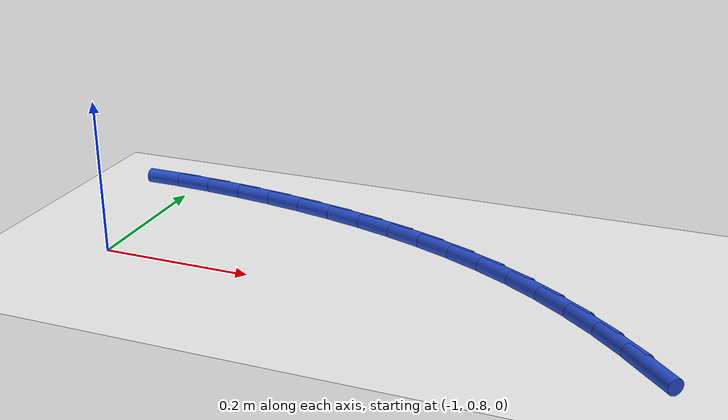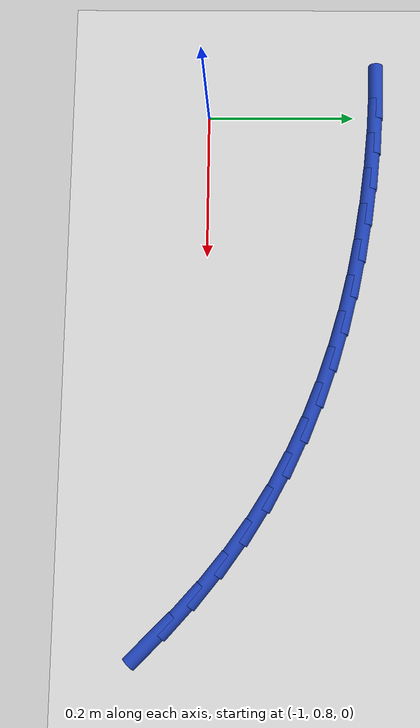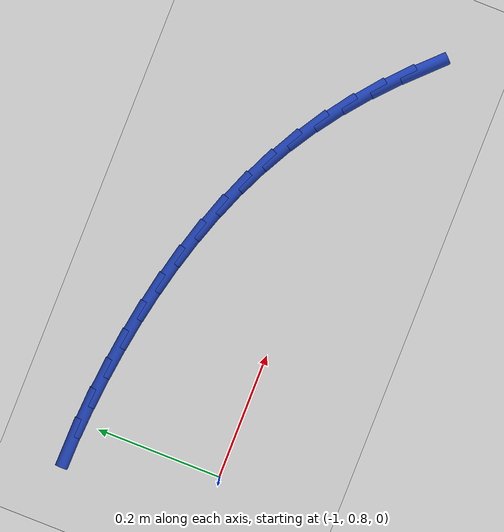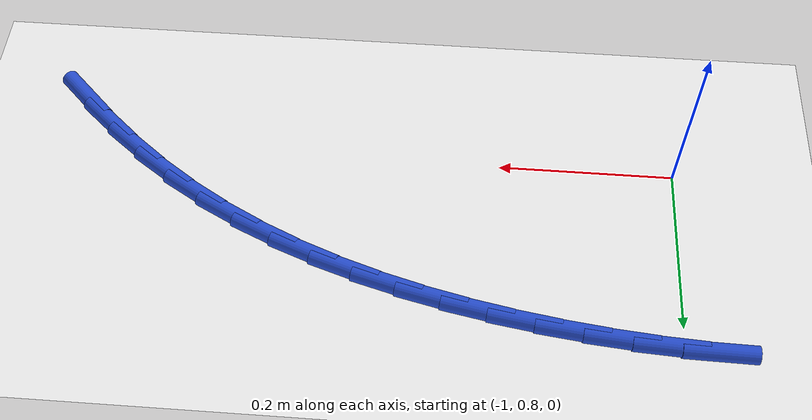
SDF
<sdf version="1.6">
 <world name="default">
  <model name="ground_plane">
   <static>1</static>
   <link name="link">
    <collision name="collision">
     <geometry><plane><normal>0 0 1</normal><size>100 100</size></plane></geometry>
     <surface><friction><ode><mu>100</mu><mu2>50</mu2></ode></friction></surface>
    </collision>
    <visual name="visual">
     <cast_shadows>0</cast_shadows>
     <geometry><plane><normal>0 0 1</normal><size>100 100</size></plane></geometry>
     <material>
      <script><uri>file://media/materials/scripts/gazebo.material</uri><name>Gazebo/WhiteGlow</name></script>
     </material>
    </visual>
   </link>
  </model>
  <model name="line">
   <link name="link_16">
    <pose>-0.30132543480969937 0.7373756346786041 0.01 0 1.57 -0.78886531125068</pose>
    <collision name="collision">
     <geometry><cylinder><radius>0.01</radius><length>0.08</length></cylinder></geometry>
    </collision>
    <visual name="visual">
     <material>
      <script><name>Gazebo/Blue</name><uri>file://media/materials/scripts/gazebo.material</uri></script>
     </material>
     <geometry><cylinder><radius>0.01</radius><length>0.08</length></cylinder></geometry>
    </visual>
   </link>
   <link name="link_17">
    <pose>-0.3370866824541095 0.7733857251610479 0.01 0 1.57 -0.7341581569797597</pose>
    <collision name="collision">
     <geometry><cylinder><radius>0.01</radius><length>0.08</length></cylinder></geometry>
    </collision>
    <visual name="visual">
     <material>
      <script><name>Gazebo/Blue</name><uri>file://media/materials/scripts/gazebo.material</uri></script>
     </material>
     <geometry><cylinder><radius>0.01</radius><length>0.08</length></cylinder></geometry>
    </visual>
   </link>
   <link name="link_18">
    <pose>-0.37459863951592803 0.8072377858676616 0.01 0 1.57 -0.6767106889745715</pose>
    <collision name="collision">
     <geometry><cylinder><radius>0.01</radius><length>0.08</length></cylinder></geometry>
    </collision>
    <visual name="visual">
     <material>
      <script><name>Gazebo/Blue</name><uri>file://media/materials/scripts/gazebo.material</uri></script>
     </material>
     <geometry><cylinder><radius>0.01</radius><length>0.08</length></cylinder></geometry>
    </visual>
   </link>
   <link name="link_19">
    <pose>-0.41382710505923653 0.8387474815054963 0.01 0 1.57 -0.6163706837453382</pose>
    <collision name="collision">
     <geometry><cylinder><radius>0.01</radius><length>0.08</length></cylinder></geometry>
    </collision>
    <visual name="visual">
     <material>
      <script><name>Gazebo/Blue</name><uri>file://media/materials/scripts/gazebo.material</uri></script>
     </material>
     <geometry><cylinder><radius>0.01</radius><length>0.08</length></cylinder></geometry>
    </visual>
   </link>
   <link name="link_20">
    <pose>-0.4547378781481167 0.8677304767816044 0.01 0 1.57 -0.5531404171532092</pose>
    <collision name="collision">
     <geometry><cylinder><radius>0.01</radius><length>0.08</length></cylinder></geometry>
    </collision>
    <visual name="visual">
     <material>
      <script><name>Gazebo/Blue</name><uri>file://media/materials/scripts/gazebo.material</uri></script>
     </material>
     <geometry><cylinder><radius>0.01</radius><length>0.08</length></cylinder></geometry>
    </visual>
   </link>
   <link name="link_21">
    <pose>-0.4972950920885079 0.8940067670521239 0.01 0 1.57 -0.4900063854658154</pose>
    <collision name="collision">
     <geometry><cylinder><radius>0.01</radius><length>0.08</length></cylinder></geometry>
    </collision>
    <visual name="visual">
     <material>
      <script><name>Gazebo/Blue</name><uri>file://media/materials/scripts/gazebo.material</uri></script>
     </material>
     <geometry><cylinder><radius>0.01</radius><length>0.08</length></cylinder></geometry>
    </visual>
   </link>
   <link name="link_22">
    <pose>-0.541408828059521 0.9175368727516332 0.01 0 1.57 -0.43068710015319955</pose>
    <collision name="collision">
     <geometry><cylinder><radius>0.01</radius><length>0.08</length></cylinder></geometry>
    </collision>
    <visual name="visual">
     <material>
      <script><name>Gazebo/Blue</name><uri>file://media/materials/scripts/gazebo.material</uri></script>
     </material>
     <geometry><cylinder><radius>0.01</radius><length>0.08</length></cylinder></geometry>
    </visual>
   </link>
   <link name="link_23">
    <pose>-0.5869245837281822 0.9384492189585116 0.01 0 1.57 -0.37550168849485815</pose>
    <collision name="collision">
     <geometry><cylinder><radius>0.01</radius><length>0.08</length></cylinder></geometry>
    </collision>
    <visual name="visual">
     <material>
      <script><name>Gazebo/Blue</name><uri>file://media/materials/scripts/gazebo.material</uri></script>
     </material>
     <geometry><cylinder><radius>0.01</radius><length>0.08</length></cylinder></geometry>
    </visual>
   </link>
   <link name="link_24">
    <pose>-0.6336840637818079 0.956882091764988 0.01 0 1.57 -0.32444526086837605</pose>
    <collision name="collision">
     <geometry><cylinder><radius>0.01</radius><length>0.08</length></cylinder></geometry>
    </collision>
    <visual name="visual">
     <material>
      <script><name>Gazebo/Blue</name><uri>file://media/materials/scripts/gazebo.material</uri></script>
     </material>
     <geometry><cylinder><radius>0.01</radius><length>0.08</length></cylinder></geometry>
    </visual>
   </link>
   <link name="link_25">
    <pose>-0.6815289729077144 0.9729737772632904 0.01 0 1.57 -0.2774258465573865</pose>
    <collision name="collision">
     <geometry><cylinder><radius>0.01</radius><length>0.08</length></cylinder></geometry>
    </collision>
    <visual name="visual">
     <material>
      <script><name>Gazebo/Blue</name><uri>file://media/materials/scripts/gazebo.material</uri></script>
     </material>
     <geometry><cylinder><radius>0.01</radius><length>0.08</length></cylinder></geometry>
    </visual>
   </link>
   <link name="link_26">
    <pose>-0.730301015793218 0.9868625615456478 0.01 0 1.57 -0.23429175470687763</pose>
    <collision name="collision">
     <geometry><cylinder><radius>0.01</radius><length>0.08</length></cylinder></geometry>
    </collision>
    <visual name="visual">
     <material>
      <script><name>Gazebo/Blue</name><uri>file://media/materials/scripts/gazebo.material</uri></script>
     </material>
     <geometry><cylinder><radius>0.01</radius><length>0.08</length></cylinder></geometry>
    </visual>
   </link>
   <link name="link_27">
    <pose>-0.7798418971256349 0.9986867307042888 0.01 0 1.57 -0.1948549506099465</pose>
    <collision name="collision">
     <geometry><cylinder><radius>0.01</radius><length>0.08</length></cylinder></geometry>
    </collision>
    <visual name="visual">
     <material>
      <script><name>Gazebo/Blue</name><uri>file://media/materials/scripts/gazebo.material</uri></script>
     </material>
     <geometry><cylinder><radius>0.01</radius><length>0.08</length></cylinder></geometry>
    </visual>
   </link>
   <link name="link_28">
    <pose>-0.829993321592282 1.0085845708314423 0.01 0 1.57 -0.15890977675174772</pose>
    <collision name="collision">
     <geometry><cylinder><radius>0.01</radius><length>0.08</length></cylinder></geometry>
    </collision>
    <visual name="visual">
     <material>
      <script><name>Gazebo/Blue</name><uri>file://media/materials/scripts/gazebo.material</uri></script>
     </material>
     <geometry><cylinder><radius>0.01</radius><length>0.08</length></cylinder></geometry>
    </visual>
   </link>
   <link name="link_29">
    <pose>-0.8805969938804752 1.0166943680193368 0.01 0 1.57 -0.12575717200270417</pose>
    <collision name="collision">
     <geometry><cylinder><radius>0.01</radius><length>0.08</length></cylinder></geometry>
    </collision>
    <visual name="visual">
     <material>
      <script><name>Gazebo/Blue</name><uri>file://media/materials/scripts/gazebo.material</uri></script>
     </material>
     <geometry><cylinder><radius>0.01</radius><length>0.08</length></cylinder></geometry>
    </visual>
   </link>
   <link name="link_30">
    <pose>-0.9314992629518228 1.0231296536414716 0.01 0 1.57 -0.09209963035551938</pose>
    <collision name="collision">
     <geometry><cylinder><radius>0.01</radius><length>0.08</length></cylinder></geometry>
    </collision>
    <visual name="visual">
     <material>
      <script><name>Gazebo/Blue</name><uri>file://media/materials/scripts/gazebo.material</uri></script>
     </material>
     <geometry><cylinder><radius>0.01</radius><length>0.08</length></cylinder></geometry>
    </visual>
   </link>
   <link name="link_31">
    <pose>-0.9825758990564195 1.027847138936433 0.01 0 1.57 -0.05655425538767064</pose>
    <collision name="collision">
     <geometry><cylinder><radius>0.01</radius><length>0.08</length></cylinder></geometry>
    </collision>
    <visual name="visual">
     <material>
      <script><name>Gazebo/Blue</name><uri>file://media/materials/scripts/gazebo.material</uri></script>
     </material>
     <geometry><cylinder><radius>0.01</radius><length>0.08</length></cylinder></geometry>
    </visual>
   </link>
   <link name="link_32">
    <pose>-1.0337141585444407 1.030742312407259 0.01 0 1.57 -0.018949849747026366</pose>
    <collision name="collision">
     <geometry><cylinder><radius>0.01</radius><length>0.08</length></cylinder></geometry>
    </collision>
    <visual name="visual">
     <material>
      <script><name>Gazebo/Blue</name><uri>file://media/materials/scripts/gazebo.material</uri></script>
     </material>
     <geometry><cylinder><radius>0.01</radius><length>0.08</length></cylinder></geometry>
    </visual>
   </link>
  </model>
 </world>
</sdf>
